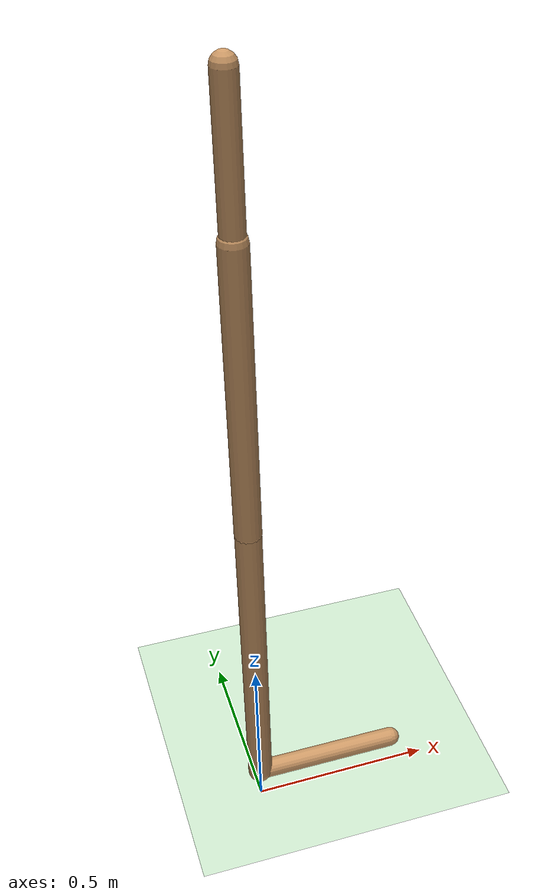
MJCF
<mujoco model="walker2d">
  <compiler angle="degree" inertiafromgeom="true" />
  <default>
    <joint armature="0.01" damping=".1" limited="true" />
    <geom conaffinity="0" condim="3" contype="1" density="1000" friction=".7 .1 .1" rgba="0.8 0.6 .4 1" />
  </default>
  <option integrator="RK4" timestep="0.002" />
  <worldbody>
    <light cutoff="100" diffuse="1 1 1" dir="-0 0 -1.3" directional="true" exponent="1" pos="0 0 1.3" specular=".1 .1 .1" />
    <geom conaffinity="1" condim="3" name="floor" pos="0 0 0" rgba="0.8 0.9 0.8 1" size="40 40 40" type="plane" material="MatPlane" />
    <body name="torso" pos="0 0 1.978275066614151">
      <camera name="track" mode="trackcom" pos="0 -5 -1.25" xyaxes="1 0 0 0 0 1" />
      <joint armature="0" axis="1 0 0" damping="0" limited="false" name="rootx" pos="0 0 -1.25" stiffness="0" type="slide" />
      <joint armature="0" axis="0 0 1" damping="0" limited="false" name="rootz" pos="0 0 -1.25" ref="1.25" stiffness="0" type="slide" />
      <joint armature="0" axis="0 1 0" damping="0" limited="false" name="rooty" pos="0 0 0" stiffness="0" type="hinge" />
      <geom friction="0.9" name="torso_geom" size="0.029532570391893387 0.18420425057411194" type="capsule" />
      <body name="thigh" pos="0 0 -0.18420425057411194">
        <joint axis="0 -1 0" name="thigh_joint" pos="0 0 0" range="-150 0" type="hinge" />
        <site name="torso_thigh_site" pos="0 0 0" size="0.01" type="sphere" rgba="1 0 0 0.5" />
        <geom friction="0.9" pos="0 0 -0.39443695545196533" name="thigh_geom" size="0.035065658390522 0.39443695545196533" type="capsule" />
        <body name="leg" pos="0 0 -1.2414723634719849">
          <joint axis="0 -1 0" name="leg_joint" pos="0 0 0.4525984525680542" range="-150 0" type="hinge" />
          <site name="thigh_leg_site" pos="0 0 0.25" size="0.01" type="sphere" rgba="1 0 0 0.5" />
          <geom friction="0.9" name="leg_geom" size="0.034385718405246735 0.4525984525680542" type="capsule" />
          <body name="foot" pos="0.4008737802505493 0 -0.5525984525680542">
            <joint axis="0 -1 0" name="foot_joint" pos="-0.4008737802505493 0 0.1" range="-45 45" type="hinge" />
            <site name="leg_foot_site" pos="-0.2 0 0.1" size="0.01" type="sphere" rgba="1 0 0 0.5" />
            <geom friction="0.9" pos="-0.20043689012527466 0 0.1" quat="0.70710678118654757 0 -0.70710678118654746 0" name="foot_geom" size="0.027466189116239548 0.20043689012527466" type="capsule" />
          </body>
        </body>
      </body>

      <body name="thigh_left" pos="0 0 -0.18420425057411194">
        <joint axis="0 -1 0" name="thigh_left_joint" pos="0 0 0" range="-150 0" type="hinge" />
        <site name="torso_thigh_left_site" pos="0 0 0" size="0.01" type="sphere" rgba="1 0 0 0.5" />
        <geom friction="0.9" name="thigh_left_geom" rgba=".7 .3 .6 1" size="0.035065658390522 0.39443695545196533" pos="0 0 -0.39443695545196533" type="capsule" />
        <body name="leg_left" pos="0 0 -1.2414723634719849">
          <joint axis="0 -1 0" name="leg_left_joint" pos="0 0 0.4525984525680542" range="-150 0" type="hinge" />
          <site name="thigh_leg_left_site" pos="0 0 0.25" size="0.01" type="sphere" rgba="1 0 0 0.5" />
          <geom friction="0.9" name="leg_left_geom" rgba=".7 .3 .6 1" size="0.034385718405246735 0.4525984525680542" type="capsule" />
          <body name="foot_left" pos="0.4008737802505493 0 -0.5525984525680542">
            <joint axis="0 -1 0" name="foot_left_joint" pos="-0.4008737802505493 0 0.1" range="-45 45" type="hinge" />
            <site name="leg_foot_left_site" pos="-0.2 0 0.1" size="0.01" type="sphere" rgba="1 0 0 0.5" />
            <geom friction="1.9" name="foot_left_geom" rgba=".7 .3 .6 1" size="0.027466189116239548 0.20043689012527466" pos="-0.20043689012527466 0 0.1" type="capsule" quat="0.70710678118654757 0 -0.70710678118654746 0" />
          </body>
        </body>
      </body>
    </body>
  </worldbody>
  <actuator>

    <motor ctrllimited="true" ctrlrange="-1.0 1.0" gear="86.22219334256926" joint="thigh_joint" />
    <motor ctrllimited="true" ctrlrange="-1.0 1.0" gear="133.78557144998388" joint="leg_joint" />
    <motor ctrllimited="true" ctrlrange="-1.0 1.0" gear="42.0021930917278" joint="foot_joint" />
    <motor ctrllimited="true" ctrlrange="-1.0 1.0" gear="86.22219334256926" joint="thigh_left_joint" />
    <motor ctrllimited="true" ctrlrange="-1.0 1.0" gear="133.78557144998388" joint="leg_left_joint" />
    <motor ctrllimited="true" ctrlrange="-1.0 1.0" gear="42.0021930917278" joint="foot_left_joint" />

  </actuator>
    <asset>
        <texture type="skybox" builtin="gradient" rgb1=".4 .5 .6" rgb2="0 0 0" width="100" height="100" />
        <texture builtin="flat" height="1278" mark="cross" markrgb="1 1 1" name="texgeom" random="0.01" rgb1="0.8 0.6 0.4" rgb2="0.8 0.6 0.4" type="cube" width="127" />
        <texture builtin="checker" height="100" name="texplane" rgb1="0 0 0" rgb2="0.8 0.8 0.8" type="2d" width="100" />
        <material name="MatPlane" reflectance="0.5" shininess="1" specular="1" texrepeat="60 60" texture="texplane" />
        <material name="geom" texture="texgeom" texuniform="true" />
    </asset>

  <sensor>
    <force site="torso_thigh_site" name="torso_thigh_sensor" />
    <force site="thigh_leg_site" name="thigh_leg_sensor" />
    <force site="leg_foot_site" name="leg_foot_sensor" />
    <force site="torso_thigh_left_site" name="torso_thigh_left_sensor" />
    <force site="thigh_leg_left_site" name="thigh_leg_left_sensor" />
    <force site="leg_foot_left_site" name="leg_foot_left_sensor" />
  </sensor>
</mujoco>
